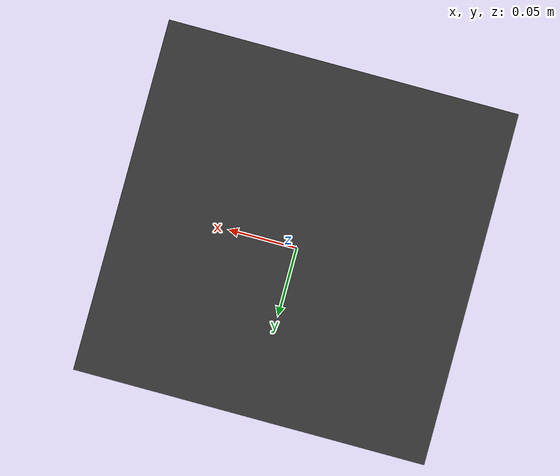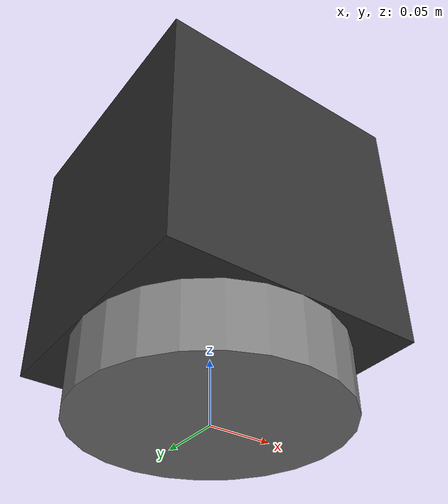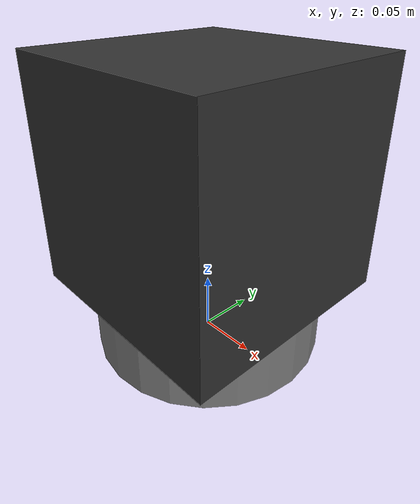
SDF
<?xml version="1.0" ?>
<sdf version="1.6">
    <model name="camera_model">
        <static>true</static>
        <link name="base_link">
            <pose>0 0 0.05 0 0 0</pose>
            <visual name="cylinder_visual">
                <geometry>
                    <cylinder>
                        <radius>0.1</radius>
                        <length>0.1</length>
                    </cylinder>
                </geometry>
                <material>
                    <ambient>0.5 0.5 0.5 1</ambient>
                    <diffuse>0.5 0.5 0.5 1</diffuse>
                    <specular>0.1 0.1 0.1 1</specular>
                </material>
            </visual>
            <collision name="cylinder_collision">
                <geometry>
                    <cylinder>
                        <radius>0.1</radius>
                        <length>0.1</length>
                    </cylinder>
                </geometry>
            </collision>
        </link>
        <link name="camera_link">
            <pose>0 0 0.15 0 0 0</pose>
            <visual name="cube_visual">
                <geometry>
                    <box>
                        <size>0.2 0.2 0.2</size>
                    </box>
                </geometry>
                <material>
                    <ambient>0.2 0.2 0.2 1</ambient>
                    <diffuse>0.2 0.2 0.2 1</diffuse>
                    <specular>0.1 0.1 0.1 1</specular>
                </material>
            </visual>
            <collision name="cube_collision">
                <geometry>
                    <box>
                        <size>0.2 0.2 0.2</size>
                    </box>
                </geometry>
            </collision>
        </link>
        <sensor name="camera_sensor" type="camera">
            <pose>0 0 0 0 1.5708 0</pose>
            <camera>
            <horizontal_fov>1.047</horizontal_fov>
            <image>
                <width>640</width>
                <height>480</height>
                <format>R8G8B8</format>
            </image>
            <clip>
                <near>0.1</near>
                <far>100</far>
            </clip>
            </camera>
            <always_on>true</always_on>
            <update_rate>30</update_rate>
            <visualize>true</visualize>
            <plugin name="camera_controller" filename="libgazebo_ros_camera.so">
                <alwaysOn>true</alwaysOn>
                <updateRate>30.0</updateRate>
                <cameraName>camera</cameraName>
                <imageTopicName>image_raw</imageTopicName>
                <cameraInfoTopicName>camera_info</cameraInfoTopicName>
                <frameName>camera_link</frameName>
                <hackBaseline>0.07</hackBaseline>
                <distortionK1>0.0</distortionK1>
                <distortionK2>0.0</distortionK2>
                <distortionK3>0.0</distortionK3>
                <distortionT1>0.0</distortionT1>
                <distortionT2>0.0</distortionT2>
            </plugin>
        </sensor>
    </model>
</sdf>
